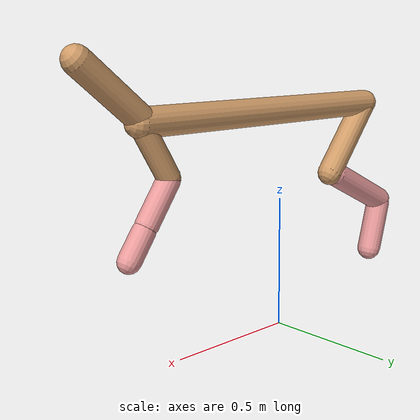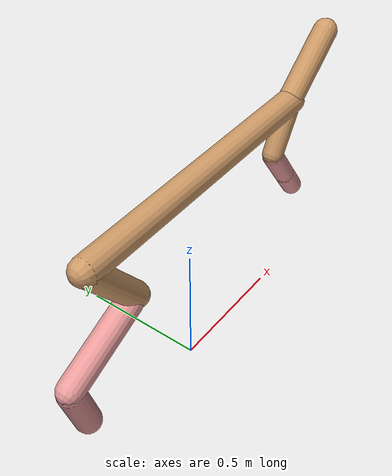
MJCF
<mujoco model="cheetah">
  <compiler angle="radian" coordinate="local" inertiafromgeom="true" settotalmass="14" />
  <default>
    <joint armature=".1" damping=".01" limited="true" solimplimit="0 .8 .03" solreflimit=".02 1" stiffness="8" />
    <geom conaffinity="0" condim="3" contype="1" friction="0.8 .1 .1" rgba="0.8 0.6 .4 1" solimp="0.0 0.8 0.01" solref="0.02 1" />
    <motor ctrllimited="true" ctrlrange="-1 1" />
  </default>
  <size nstack="300000" nuser_geom="1" />
  <option gravity="0 0 -9.81" timestep="0.01" />
  <worldbody>
    <body name="torso" pos="0.0 0.0 0.8346763025451756">
      <joint armature="0" axis="1 0 0" damping="0" limited="false" name="ignorex" pos="0 0 0" stiffness="0" type="slide" />
      <joint armature="0" axis="0 0 1" damping="0" limited="false" name="ignorez" pos="0 0 0" stiffness="0" type="slide" />
      <joint armature="0" axis="0 1 0" damping="0" limited="false" name="ignorey" pos="0 0 0" stiffness="0" type="hinge" />
      <geom fromto="-0.5 0.0 0.0 0.6366693960266134 0.0 0.0" name="torso" size="0.0507676395817835" type="capsule" />
      <geom axisangle="0 1 0 .87" name="head" pos="0.7366693960266134 0.0 0.1" size="0.04687019226208467 0.15" type="capsule" />

      <body name="bthigh" pos="-.5 0 0">
        <joint axis="0 1 0" damping="6" name="bthigh" pos="0 0 0" range="-.52 1.05" stiffness="240" type="hinge" />
        <geom axisangle="0 1 0 -3.8" name="bthigh" pos="0.11009022938942385 0.0 -0.14311729820625102" size="0.048659733808070475 0.16154920666868683" type="capsule" />
        <body name="bshin" pos="0.1801804587788477 0.0 -0.27623459641250203">
          <joint axis="0 1 0" damping="4.5" name="bshin" pos="0 0 0" range="-.785 .785" stiffness="180" type="hinge" />
          <geom axisangle="0 1 0 -2.03" name="bshin" pos="-0.15531247631098344 0.0 -0.07765623815549172" rgba="0.9 0.6 0.6 1" size="0.048659733808070475 0.16711986896760708" type="capsule" />
          <body name="bfoot" pos="-0.3106249526219669 0.0 -0.15531247631098344">
            <joint axis="0 1 0" damping="3" name="bfoot" pos="0 0 0" range="-.4 .785" stiffness="120" type="hinge" />
            <geom axisangle="0 1 0 -.27" name="bfoot" pos="0.0331699325092678 0.0 -0.10724944844663258" rgba="0.9 0.6 0.6 1" size="0.048659733808070475 0.10472845121970044" type="capsule" />
            <inertial mass="10" />
          </body>
        </body>
      </body>
      <body name="fthigh" pos="0.6366693960266134 0.0 0.0">
        <joint axis="0 1 0" damping="4.5" name="fthigh" pos="0 0 0" range="-1.5 0.8" stiffness="180" type="hinge" />
        <geom axisangle="0 1 0 .52" name="fthigh" pos="-0.05595363113939229 0.0 -0.09592051052467249" size="0.04051975775044699 0.10512308676412221" type="capsule" />
        <body name="fshin" pos="-0.11190726227878459 0.0 -0.19184102104934497">
          <joint axis="0 1 0" damping="3" name="fshin" pos="0 0 0" range="-1.2 1.1" stiffness="120" type="hinge" />
          <geom axisangle="0 1 0 -.6" name="fshin" pos="0.05199175223147223 0.0 -0.07198858001280771" rgba="0.9 0.6 0.6 1" size="0.04051975775044699 0.0837823097518568" type="capsule" />
          <body name="ffoot" pos="0.10398350446294446 0.0 -0.14397716002561542">
            <joint axis="0 1 0" damping="1.5" name="ffoot" pos="0 0 0" range="-3.1 -0.3" stiffness="60" type="hinge" />
            <geom axisangle="0 1 0 -.6" name="ffoot" pos="0.03706597239226912 0.0 -0.05765817927686309" rgba="0.9 0.6 0.6 1" size="0.04051975775044699 0.05532794040216959" type="capsule" />
            <inertial mass="10" />
          </body>
        </body>
      </body>
    </body>
  </worldbody>
  <actuator>
    <motor gear="120" joint="bthigh" name="bthigh" />
    <motor gear="90" joint="bshin" name="bshin" />
    <motor gear="60" joint="bfoot" name="bfoot" />
    <motor gear="120" joint="fthigh" name="fthigh" />
    <motor gear="60" joint="fshin" name="fshin" />
    <motor gear="30" joint="ffoot" name="ffoot" />
  </actuator>
</mujoco>
